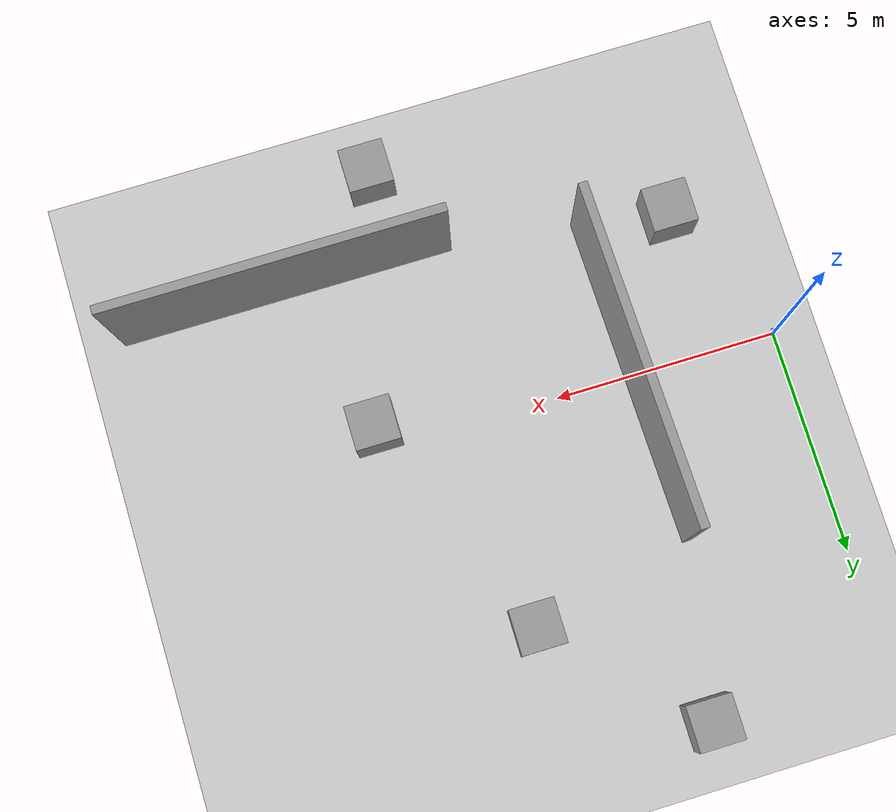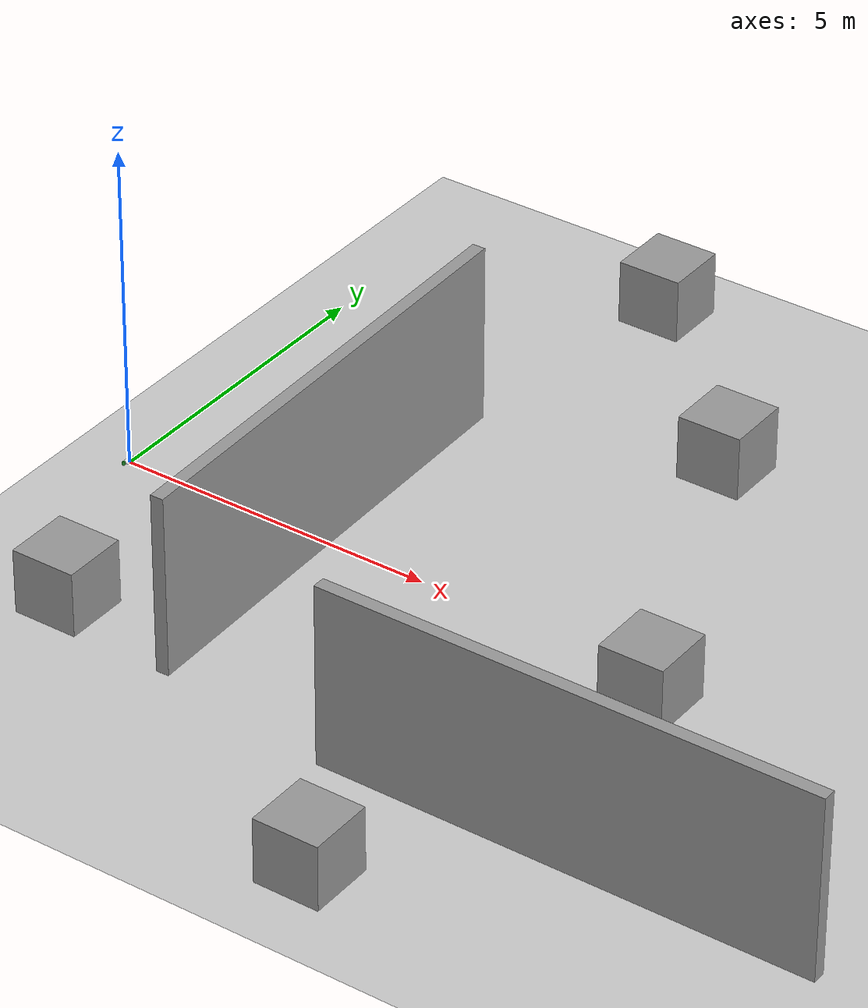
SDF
<sdf version="1.4">
 <world name="default">
  <light name="sun" type="directional">
   <pose>0 0 10 0 -0 0</pose>
   <diffuse>0.8 0.8 0.8 1</diffuse>
   <specular>0.2 0.2 0.2 1</specular>
   <attenuation>
    <range>1000</range>
    <constant>0.9</constant>
    <linear>0.01</linear>
    <quadratic>0.001</quadratic>
   </attenuation>
   <direction>-0.5 0.1 -0.9</direction>
  </light>
  <model name="ground_plane">
   <static>1</static>
   <link name="link">
    <collision name="collision">
     <geometry><plane><normal>0 0 1</normal><size>100 100</size></plane></geometry>
     <surface><friction><ode><mu>100</mu><mu2>50</mu2></ode></friction></surface>
    </collision>
    <visual name="visual">
     <cast_shadows>0</cast_shadows>
     <geometry><plane><normal>0 0 1</normal><size>100 100</size></plane></geometry>
     <material>
      <script><uri>file://media/materials/scripts/gazebo.material</uri><name>Gazebo/Grey</name></script>
     </material>
    </visual>
    <velocity_decay><linear>0</linear><angular>0</angular></velocity_decay>
   </link>
  </model>
  <physics type="ode">
   <max_step_size>0.001</max_step_size>
   <real_time_factor>1</real_time_factor>
   <real_time_update_rate>1000</real_time_update_rate>
   <gravity>0 0 -9.8</gravity>
  </physics>
  <scene><ambient>0.4 0.4 0.4 1</ambient><background>0.7 0.7 0.7 1</background><shadows>1</shadows></scene>
  <spherical_coordinates>
   <surface_model>EARTH_WGS84</surface_model>
   <latitude_deg>0</latitude_deg>
   <longitude_deg>0</longitude_deg>
   <elevation>0</elevation>
   <heading_deg>0</heading_deg>
  </spherical_coordinates>
  <model name="grey_wall">
   <static>1</static>
   <link name="link">
    <pose>0 0 1.4 0 -0 0</pose>
    <collision name="collision"><geometry><box><size>7.5 0.2 2.8</size></box></geometry></collision>
    <visual name="visual">
     <cast_shadows>0</cast_shadows>
     <geometry><box><size>7.5 0.2 2.8</size></box></geometry>
     <material>
      <script>
       <uri>model://grey_wall/materials/scripts</uri>
       <uri>model://grey_wall/materials/textures</uri>
       <name>vrc/grey_wall</name>
      </script>
     </material>
    </visual>
    <velocity_decay><linear>0</linear><angular>0</angular></velocity_decay>
   </link>
   <pose>3.35001 0.059363 0 0 0 -1.54713</pose>
  </model>
  <model name="unit_box_1">
   <pose>6.91136 4.6344 0.5 0 -0 0</pose>
   <link name="link">
    <inertial>
     <mass>1</mass>
     <inertia><ixx>1</ixx><ixy>0</ixy><ixz>0</ixz><iyy>1</iyy><iyz>0</iyz><izz>1</izz></inertia>
    </inertial>
    <collision name="collision"><geometry><box><size>1 1 1</size></box></geometry></collision>
    <visual name="visual">
     <geometry><box><size>1 1 1</size></box></geometry>
     <material>
      <script><uri>file://media/materials/scripts/gazebo.material</uri><name>Gazebo/Grey</name></script>
     </material>
    </visual>
    <velocity_decay><linear>0</linear><angular>0</angular></velocity_decay>
   </link>
   <static>0</static>
  </model>
  <model name="unit_box_2">
   <pose>1.48047 -3.22276 0.5 0 -0 0</pose>
   <link name="link">
    <inertial>
     <mass>1</mass>
     <inertia><ixx>1</ixx><ixy>0</ixy><ixz>0</ixz><iyy>1</iyy><iyz>0</iyz><izz>1</izz></inertia>
    </inertial>
    <collision name="collision"><geometry><box><size>1 1 1</size></box></geometry></collision>
    <visual name="visual">
     <geometry><box><size>1 1 1</size></box></geometry>
     <material>
      <script><uri>file://media/materials/scripts/gazebo.material</uri><name>Gazebo/Grey</name></script>
     </material>
    </visual>
    <velocity_decay><linear>0</linear><angular>0</angular></velocity_decay>
   </link>
   <static>0</static>
  </model>
  <model name="unit_box_3">
   <pose>7.55467 -6 0.5 0 -0 0</pose>
   <link name="link">
    <inertial>
     <mass>1</mass>
     <inertia><ixx>1</ixx><ixy>0</ixy><ixz>0</ixz><iyy>1</iyy><iyz>0</iyz><izz>1</izz></inertia>
    </inertial>
    <collision name="collision"><geometry><box><size>1 1 1</size></box></geometry></collision>
    <visual name="visual">
     <geometry><box><size>1 1 1</size></box></geometry>
     <material>
      <script><uri>file://media/materials/scripts/gazebo.material</uri><name>Gazebo/Grey</name></script>
     </material>
    </visual>
    <velocity_decay><linear>0</linear><angular>0</angular></velocity_decay>
   </link>
   <static>0</static>
  </model>
  <model name="unit_box_4">
   <pose>9 -0.489056 0.5 0 -0 0</pose>
   <link name="link">
    <inertial>
     <mass>1</mass>
     <inertia><ixx>1</ixx><ixy>0</ixy><ixz>0</ixz><iyy>1</iyy><iyz>0</iyz><izz>1</izz></inertia>
    </inertial>
    <collision name="collision"><geometry><box><size>1 1 1</size></box></geometry></collision>
    <visual name="visual">
     <geometry><box><size>1 1 1</size></box></geometry>
     <material>
      <script><uri>file://media/materials/scripts/gazebo.material</uri><name>Gazebo/Grey</name></script>
     </material>
    </visual>
    <velocity_decay><linear>0</linear><angular>0</angular></velocity_decay>
   </link>
   <static>0</static>
  </model>
  <model name="robo_robot">
   <link name="base_link">
    <inertial>
     <pose>0.0172185 0 0.0314007 0 -0 0</pose>
     <mass>0.151</mass>
     <inertia>
      <ixx>0.00114109</ixx>
      <ixy>0</ixy>
      <ixz>9.38665e-05</ixz>
      <iyy>0.00123132</iyy>
      <iyz>0</iyz>
      <izz>0.00115648</izz>
     </inertia>
    </inertial>
    <collision name="base_link_collision">
     <geometry><cylinder><length>0.005</length><radius>0.08</radius></cylinder></geometry>
    </collision>
    <collision name="base_link_collision_caster_link">
     <pose>0.05 0 -0.00545 0 -0 0</pose>
     <geometry><cylinder><length>0.02586</length><radius>0.005</radius></cylinder></geometry>
    </collision>
    <collision name="base_link_collision_laser_link">
     <pose>0.05 0 0.015 0 0.02 0</pose>
     <geometry><box><size>0.03 0.03 0.03</size></box></geometry>
    </collision>
    <visual name="base_link_visual">
     <geometry><cylinder><length>0.004</length><radius>0.08</radius></cylinder></geometry>
     <material><script><name>Gazebo/White</name><uri>__default__</uri></script></material>
    </visual>
    <visual name="base_link_visual_caster_link">
     <pose>0.05 0 -0.00545 0 -0 0</pose>
     <geometry><cylinder><length>0.02586</length><radius>0.01214</radius></cylinder></geometry>
     <material><script><name>Gazebo/Green</name><uri>__default__</uri></script></material>
    </visual>
    <visual name="base_link_visual_laser_link">
     <pose>0.05 0 0.015 0 0.02 0</pose>
     <geometry><box><size>0.03 0.03 0.03</size></box></geometry>
     <material><script><name>Gazebo/Red</name><uri>__default__</uri></script></material>
    </visual>
    <velocity_decay><linear>0</linear><angular>0</angular></velocity_decay>
    <velocity_decay><linear>0</linear><angular>0</angular></velocity_decay>
    <velocity_decay><linear>0</linear><angular>0</angular></velocity_decay>
    <sensor name="laser_sensor" type="ray">
     <visualize>1</visualize>
     <update_rate>100</update_rate>
     <ray>
      <scan>
       <horizontal>
        <samples>700</samples>
        <resolution>1</resolution>
        <min_angle>-1.5708</min_angle>
        <max_angle>1.5708</max_angle>
       </horizontal>
      </scan>
      <range><min>0.1</min><max>30</max><resolution>0.001</resolution></range>
     </ray>
     <plugin name="gazebo_ros_head_hokuyo_controller" filename="libgazebo_ros_laser.so">
      <topicName>/scan</topicName>
      <frameName>laser_sensor</frameName>
      <robotNamespace>/</robotNamespace>
     </plugin>
     <pose>0.05 0 0.015 0 0.02 0</pose>
    </sensor>
   </link>
   <link name="caster_front_link">
    <pose>0.05 0 -0.0209 0 -0 0</pose>
    <inertial>
     <mass>0.5</mass>
     <inertia><ixx>1e-07</ixx><ixy>0</ixy><ixz>0</ixz><iyy>1e-07</iyy><iyz>0</iyz><izz>1e-07</izz></inertia>
    </inertial>
    <collision name="caster_front_link_collision">
     <pose>0 0 0 1.5708 -0 0</pose>
     <geometry><sphere><radius>0.007</radius></sphere></geometry>
    </collision>
    <visual name="caster_front_link_visual">
     <pose>0 0 0 1.5708 -0 0</pose>
     <geometry><sphere><radius>0.01214</radius></sphere></geometry>
     <material><script><name>Gazebo/Green</name><uri>__default__</uri></script></material>
    </visual>
    <velocity_decay><linear>0</linear><angular>0</angular></velocity_decay>
   </link>
   <joint name="caster_front_joint" type="revolute">
    <child>caster_front_link</child>
    <parent>base_link</parent>
    <axis><xyz>0 1 0</xyz><limit><lower>-1e+16</lower><upper>1e+16</upper></limit></axis>
   </joint>
   <link name="left_wheel">
    <pose>-0.03 -0.09 0 0 -0 0</pose>
    <inertial>
     <mass>0.5</mass>
     <inertia><ixx>0.0001</ixx><ixy>0</ixy><ixz>0</ixz><iyy>0.0001</iyy><iyz>0</iyz><izz>0.0001</izz></inertia>
    </inertial>
    <collision name="left_wheel_collision">
     <pose>0 0 0 1.5708 -0 0</pose>
     <geometry><cylinder><length>0.005</length><radius>0.025</radius></cylinder></geometry>
     <surface>
      <contact><ode><kp>100000</kp><kd>1</kd></ode></contact>
      <friction><ode><mu>1</mu><mu2>1</mu2><fdir1>1 0 0</fdir1></ode></friction>
     </surface>
    </collision>
    <visual name="left_wheel_visual">
     <pose>0 0 0 1.5708 -0 0</pose>
     <geometry><cylinder><length>0.02</length><radius>0.0325</radius></cylinder></geometry>
     <material><script><name>Gazebo/Green</name><uri>__default__</uri></script></material>
    </visual>
    <velocity_decay><linear>0</linear><angular>0</angular></velocity_decay>
   </link>
   <joint name="left_wheel_joint" type="revolute">
    <child>left_wheel</child>
    <parent>base_link</parent>
    <axis><xyz>0 1 0</xyz><limit><lower>-1e+16</lower><upper>1e+16</upper></limit></axis>
   </joint>
   <link name="right_wheel">
    <pose>-0.03 0.09 0 0 -0 0</pose>
    <inertial>
     <mass>0.5</mass>
     <inertia><ixx>0.0001</ixx><ixy>0</ixy><ixz>0</ixz><iyy>0.0001</iyy><iyz>0</iyz><izz>0.0001</izz></inertia>
    </inertial>
    <collision name="right_wheel_collision">
     <pose>0 0 0 1.5708 -0 0</pose>
     <geometry><cylinder><length>0.005</length><radius>0.025</radius></cylinder></geometry>
     <surface>
      <contact><ode><kp>100000</kp><kd>1</kd></ode></contact>
      <friction><ode><mu>1</mu><mu2>1</mu2><fdir1>1 0 0</fdir1></ode></friction>
     </surface>
    </collision>
    <visual name="right_wheel_visual">
     <pose>0 0 0 1.5708 -0 0</pose>
     <geometry><cylinder><length>0.02</length><radius>0.0325</radius></cylinder></geometry>
     <material><script><name>Gazebo/Green</name><uri>__default__</uri></script></material>
    </visual>
    <velocity_decay><linear>0</linear><angular>0</angular></velocity_decay>
   </link>
   <joint name="right_wheel_joint" type="revolute">
    <child>right_wheel</child>
    <parent>base_link</parent>
    <axis><xyz>0 1 0</xyz><limit><lower>-1e+16</lower><upper>1e+16</upper></limit></axis>
   </joint>
   <static>0</static>
   <plugin name="differential_drive_controller_front" filename="libgazebo_ros_diff_drive.so">
    <rosDebugLevel>Debug</rosDebugLevel>
    <publishWheelTF>True</publishWheelTF>
    <publishTf>1</publishTf>
    <publishWheelJointState>true</publishWheelJointState>
    <alwaysOn>true</alwaysOn>
    <updateRate>100.0</updateRate>
    <leftJoint>left_wheel_joint</leftJoint>
    <rightJoint>right_wheel_joint</rightJoint>
    <wheelSeparation>0.3</wheelSeparation>
    <wheelDiameter>0.065</wheelDiameter>
    <broadcastTF>1</broadcastTF>
    <wheelTorque>30</wheelTorque>
    <wheelAcceleration>1.8</wheelAcceleration>
    <commandTopic>cmd_vel</commandTopic>
    <odometryFrame>odom</odometryFrame>
    <odometryTopic>odom</odometryTopic>
    <robotBaseFrame>base_link</robotBaseFrame>
    <robotNamespace>/</robotNamespace>
   </plugin>
   <pose>5.9e-05 -0.013889 0.026032 -1.35619e-20 -0.037087 -0.001664</pose>
  </model>
  <model name="grey_wall_0">
   <static>1</static>
   <link name="link">
    <pose>0 0 1.4 0 -0 0</pose>
    <collision name="collision"><geometry><box><size>7.5 0.2 2.8</size></box></geometry></collision>
    <visual name="visual">
     <cast_shadows>0</cast_shadows>
     <geometry><box><size>7.5 0.2 2.8</size></box></geometry>
     <material>
      <script>
       <uri>model://grey_wall/materials/scripts</uri>
       <uri>model://grey_wall/materials/textures</uri>
       <name>vrc/grey_wall</name>
      </script>
     </material>
    </visual>
    <velocity_decay><linear>0</linear><angular>0</angular></velocity_decay>
   </link>
   <pose>10 -4 0 0 -0 0</pose>
  </model>
  <model name="unit_box_1_0">
   <pose>4 7.57465 0.5 0 -0 0</pose>
   <link name="link">
    <inertial>
     <mass>1</mass>
     <inertia><ixx>1</ixx><ixy>0</ixy><ixz>0</ixz><iyy>1</iyy><iyz>0</iyz><izz>1</izz></inertia>
    </inertial>
    <collision name="collision"><geometry><box><size>1 1 1</size></box></geometry></collision>
    <visual name="visual">
     <geometry><box><size>1 1 1</size></box></geometry>
     <material>
      <script><uri>file://media/materials/scripts/gazebo.material</uri><name>Gazebo/Grey</name></script>
     </material>
    </visual>
    <velocity_decay><linear>0</linear><angular>0</angular></velocity_decay>
   </link>
   <static>0</static>
  </model>
 </world>
</sdf>
